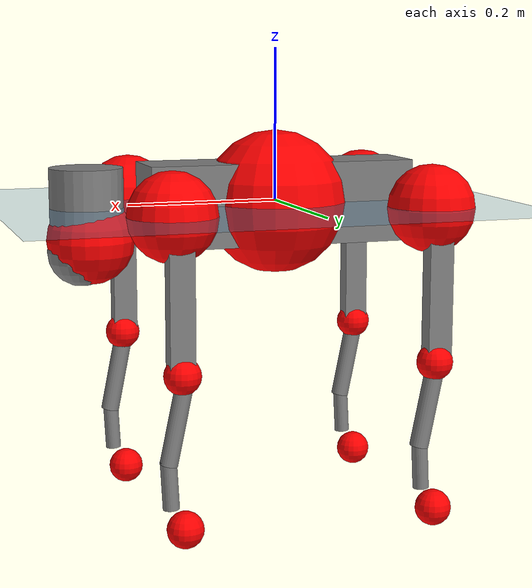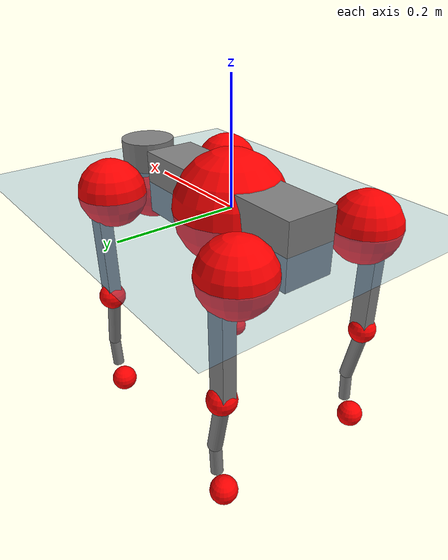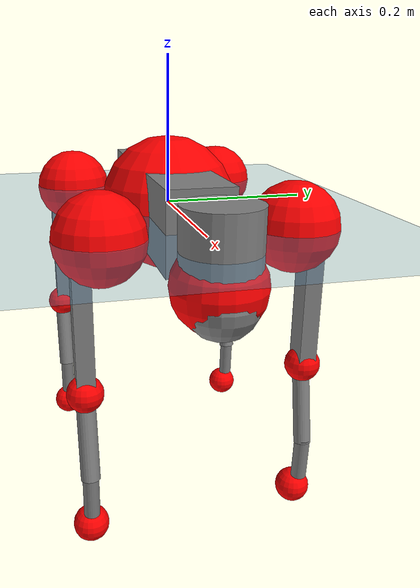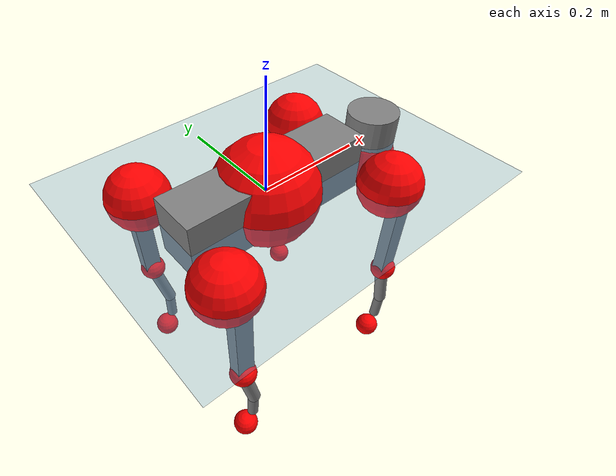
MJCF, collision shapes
<mujoco model="go2">
  <compiler angle="radian" assetdir="assets" balanceinertia="true" inertiafromgeom="false"/>

  <option timestep="0.005" density="1.2" viscosity="2e-05"/>

  <size nkey="1"/>

  <visual>
    <quality shadowsize="8192"/>
    <map shadowclip="0.5"/>
  </visual>

  <default>
    <default class="/">
      <geom contype="0" conaffinity="0" group="1" solref="-1000 -80"/>
      <site size="0.01 0.005 0.005" group="5"/>
      <general forcelimited="true" biastype="affine" gainprm="20" biasprm="0 -20 -0.5"/>
      <default class="go2">
        <joint armature="0.01" damping="0.01" frictionloss="0.2"/>
        <geom condim="1" margin="0.001"/>
        <default class="visual">
          <geom type="mesh" group="2"/>
        </default>
        <default class="collision">
          <geom group="3"/>
          <default class="foot">
            <geom size="0.022 0 0" condim="6" priority="1" friction="0.8 0.02 0.01" solimp="0.015 1 0.022"/>
          </default>
        </default>
        <default class="reward_collision_sphere">
          <geom group="5" rgba="1 0 0 1"/>
        </default>
      </default>
    </default>
  </default>

  <asset>
    <texture type="skybox" colorspace="auto" name="//unnamed_texture_0" builtin="gradient" rgb1="0.95 0.95 0.95" rgb2="0.95 0.95 0.95" width="100" height="600"/>
    <texture type="2d" colorspace="auto" name="texplane" builtin="checker" rgb1="0.345 0.575 0.748" rgb2="0.345 0.575 0.748" markrgb="1 1 1" width="512" height="512"/>
    <material name="MatPlane" class="/" texture="texplane" texuniform="true" texrepeat="2 2" specular="0.9"/>
    <material name="metal" class="/" rgba="0.9 0.95 0.95 1"/>
    <material name="black" class="/" rgba="0 0 0 1"/>
    <material name="white" class="/"/>
    <material name="gray" class="/" rgba="0.671705 0.692426 0.77427 1"/>
    <mesh name="base_0" class="/" file="base_0.obj"/>
    <mesh name="base_1" class="/" file="base_1.obj"/>
    <mesh name="base_2" class="/" file="base_2.obj"/>
    <mesh name="base_3" class="/" file="base_3.obj"/>
    <mesh name="base_4" class="/" file="base_4.obj"/>
    <mesh name="hip_0" class="/" file="hip_0.obj"/>
    <mesh name="hip_1" class="/" file="hip_1.obj"/>
    <mesh name="thigh_0" class="/" file="thigh_0.obj"/>
    <mesh name="thigh_1" class="/" file="thigh_1.obj"/>
    <mesh name="thigh_mirror_0" class="/" file="thigh_mirror_0.obj"/>
    <mesh name="thigh_mirror_1" class="/" file="thigh_mirror_1.obj"/>
    <mesh name="calf_0" class="/" file="calf_0.obj"/>
    <mesh name="calf_1" class="/" file="calf_1.obj"/>
    <mesh name="calf_mirror_0" class="/" file="calf_mirror_0.obj"/>
    <mesh name="calf_mirror_1" class="/" file="calf_mirror_1.obj"/>
    <mesh name="foot" class="/" file="foot.obj"/>
  </asset>

  <worldbody>
    <geom name="floor" class="/" size="100 100 0.125" type="plane" group="0" material="MatPlane"/>
    <light name="toplight_shadow" class="/" pos="0 0 5" dir="0.0990148 0.0990148 -0.990148" type="directional" ambient="0.04 0.04 0.04" diffuse="0.55 0.55 0.55" specular="0.12 0.12 0.12"/>
    <light name="toplight_fill" class="/" pos="0 0 5" dir="0.0990148 0.0990148 -0.990148" type="directional" castshadow="false" ambient="0.04 0.04 0.04" diffuse="0.3 0.3 0.3" specular="0.08 0.08 0.08"/>
    <body name="trunk" childclass="go2" pos="-8.06329e-05 -7.89557e-05 -0.00158823" quat="1 -0.000158519 -0.000155143 4.02681e-05">
      <inertial pos="0.0190641 0.00248583 -0.00296765" quat="-0.000524349 0.713429 -0.00171745 0.700725" mass="5.86427" diaginertia="0.0618488 0.117116 0.0163569"/>
      <joint name="//unnamed_joint_0" type="free" armature="0" damping="0" frictionloss="0"/>
      <geom name="//unnamed_geom_1" class="visual" material="black" mesh="base_0"/>
      <geom name="//unnamed_geom_2" class="visual" material="black" mesh="base_1"/>
      <geom name="//unnamed_geom_3" class="visual" material="black" mesh="base_2"/>
      <geom name="//unnamed_geom_4" class="visual" material="white" mesh="base_3"/>
      <geom name="//unnamed_geom_5" class="visual" material="gray" mesh="base_4"/>
      <geom name="trunk_1" class="collision" size="0.178752 0.0444266 0.0541672" type="box"/>
      <geom name="trunk_2" class="collision" size="0.0475151 0.0427636" pos="0.253946 0 0.00924265" type="cylinder"/>
      <geom name="trunk_3" class="collision" size="0.0446642" pos="0.261074 0 -0.0554559"/>
      <geom name="//unnamed_geom_9" class="reward_collision_sphere" size="0.0950302"/>
      <geom name="//unnamed_geom_10" class="reward_collision_sphere" size="0.0570181" pos="0.249491 0 -0.0415919"/>
      <site name="imu" pos="-0.0270168 -0.00239782 0.0356119" size="0.00950302"/>
      <camera name="track" pos="0 -2.0712 0" quat="0.707107 0.707107 0 0" mode="trackcom"/>
      <camera name="ego_camera" pos="0.278004 0 0.0415919" quat="-0.5 -0.5 0.5 0.5"/>
      <body name="FL_hip" pos="0.171482 0.0477066 0.000122528" quat="1 -0.00016236 -7.25453e-05 -0.000233688">
        <inertial pos="-0.00706526 0.00166048 -0.000532404" quat="0.495954 0.500931 0.50567 0.497389" mass="0.597239" diaginertia="0.000503694 0.000715971 0.00033052"/>
        <joint name="FL_hip_joint" pos="0 0 0" axis="0.999988 0.00368731 0.00321465" stiffness="0.00233826" range="-1.04032 1.05039" armature="0.00993877" damping="0.00759132" frictionloss="0.168679"/>
        <geom name="//unnamed_geom_11" class="visual" material="metal" mesh="hip_0"/>
        <geom name="//unnamed_geom_12" class="visual" material="gray" mesh="hip_1"/>
        <geom name="//unnamed_geom_13" class="collision" size="0.0437139 0.019006" pos="0 0.0828482 0" quat="0.707107 0.707107 0 0" type="cylinder"/>
        <geom name="//unnamed_geom_14" class="reward_collision_sphere" size="0.0570181" pos="0 0.0724922 0"/>
        <body name="FL_thigh" pos="-0.0019143 0.0987425 0.00227412" quat="1 6.19485e-05 6.41372e-05 4.06069e-06">
          <inertial pos="-0.00419287 -0.0227757 -0.0304482" quat="0.829474 0.0828391 -0.0181942 0.552068" mass="0.945095" diaginertia="0.0033439 0.00691007 0.000555028"/>
          <joint name="FL_thigh_joint" pos="0 0 0" axis="-0.00647785 0.999966 -0.00505679" stiffness="0.00399059" range="-1.59155 3.48825" armature="0.00912771" damping="0.00943777" frictionloss="0.191634"/>
          <geom name="//unnamed_geom_15" class="visual" material="metal" mesh="thigh_0"/>
          <geom name="//unnamed_geom_16" class="visual" material="gray" mesh="thigh_1"/>
          <geom name="//unnamed_geom_17" class="collision" size="0.101207 0.0116412 0.0161551" pos="0 0 -0.0984343" quat="0.707107 0 0.707107 0" type="box"/>
          <body name="FL_calf" pos="-0.0016902 0.000628348 -0.195105" quat="0.999999 -0.000861738 0.000801254 0.000690709">
            <inertial pos="0.00510381 -0.000562896 -0.130006" quat="0.710935 0.00122154 -0.00473608 0.703241" mass="0.204392" diaginertia="0.000837697 0.00170221 3.52424e-05"/>
            <joint name="FL_calf_joint" pos="0 0 0" axis="0.00338689 0.999958 0.00853525" stiffness="0.00011729" range="-2.72448 -0.824806" armature="0.00966845" damping="0.0120022" frictionloss="0.174952"/>
            <geom name="//unnamed_geom_18" class="visual" material="gray" mesh="calf_0"/>
            <geom name="//unnamed_geom_19" class="visual" material="black" mesh="calf_1"/>
            <geom name="FL_calf0" class="collision" size="0.0114036 0.0570181" pos="0.00712831 0 -0.0554559" quat="0.994493 0 -0.104807 0" type="cylinder"/>
            <geom name="//unnamed_geom_21" class="collision" size="0.0104533 0.0308848" pos="0.0178208 0 -0.136791" quat="0.999688 0 0.0249974 0" type="cylinder"/>
            <geom name="//unnamed_geom_22" class="visual" pos="0 0 -0.196869" quat="1 0 0 0" material="black" mesh="foot"/>
            <geom name="FL_foot" class="foot" size="0.018874" pos="-0.00178208 0 -0.196869"/>
            <geom name="//unnamed_geom_24" class="reward_collision_sphere" size="0.0237576"/>
            <geom name="//unnamed_geom_25" class="reward_collision_sphere" size="0.0237576" pos="-0.00178208 0 -0.196869"/>
            <site name="FL_foot" class="foot" pos="-0.00178208 0 -0.196869" size="0.00950302"/>
          </body>
        </body>
      </body>
      <body name="FR_hip" pos="0.172483 -0.0483439 -0.000839332" quat="0.999999 -0.000760934 0.000709281 0.000201405">
        <inertial pos="-0.00489687 -0.00165527 0.000518317" quat="0.4972 0.505107 0.500525 0.497125" mass="0.556461" diaginertia="0.000478165 0.000686773 0.000323509"/>
        <joint name="FR_hip_joint" pos="0 0 0" axis="0.999991 -0.00384835 0.00193702" stiffness="0.00310245" range="-1.00996 0.997236" armature="0.00946868" damping="0.0116795" frictionloss="0.179702"/>
        <geom name="//unnamed_geom_26" class="visual" pos="0 9.6992e-10 4.16019e-08" quat="4.63268e-05 1 0 0" material="metal" mesh="hip_0"/>
        <geom name="//unnamed_geom_27" class="visual" pos="0 1.57236e-09 -1.02897e-07" quat="4.63268e-05 1 0 0" material="gray" mesh="hip_1"/>
        <geom name="//unnamed_geom_28" class="collision" size="0.0437139 0.019006" pos="0 -0.0828482 0" quat="0.707107 0.707107 0 0" type="cylinder"/>
        <geom name="//unnamed_geom_29" class="reward_collision_sphere" size="0.0570181" pos="0 -0.0724922 0"/>
        <body name="FR_thigh" pos="0.00307305 -0.0974567 0.000793971" quat="1 0.000326093 -0.000109439 0.000238945">
          <inertial pos="-0.00262733 0.0236392 -0.0300858" quat="0.552566 -0.0204488 0.083647 0.829009" mass="1.02024" diaginertia="0.003341 0.00722048 0.000605916"/>
          <joint name="FR_thigh_joint" pos="0 0 0" axis="0.0092975 -0.999956 -0.00145006" stiffness="0.000539829" range="-3.4379 1.51676" armature="0.00960088" damping="0" frictionloss="0.199876"/>
          <geom name="//unnamed_geom_30" class="visual" material="metal" mesh="thigh_mirror_0"/>
          <geom name="//unnamed_geom_31" class="visual" material="gray" mesh="thigh_mirror_1"/>
          <geom name="//unnamed_geom_32" class="collision" size="0.101207 0.0116412 0.0161551" pos="0 0 -0.0984343" quat="0.707107 0 0.707107 0" type="box"/>
          <body name="FR_calf" pos="0.00248964 -0.000831503 -0.195917" quat="1 -0.000126143 -0.000442544 1.22557e-05">
            <inertial pos="0.00621992 0.00181662 -0.128351" quat="0.706679 -0.00185815 0.00137225 0.70753" mass="0.199631" diaginertia="0.000842001 0.00172941 3.55716e-05"/>
            <joint name="FR_calf_joint" pos="0 0 0" axis="0.00953355 -0.999955 0.000255039" range="0.817804 2.67611" armature="0.00959169" damping="0.0177419" frictionloss="0.164959"/>
            <geom name="//unnamed_geom_33" class="visual" material="gray" mesh="calf_mirror_0"/>
            <geom name="//unnamed_geom_34" class="visual" material="black" mesh="calf_mirror_1"/>
            <geom name="FR_calf0" class="collision" size="0.0123539 0.0570181" pos="0.00891039 0 -0.0554559" quat="0.995004 0 -0.0998334 0" type="cylinder"/>
            <geom name="//unnamed_geom_36" class="collision" size="0.0104533 0.0308848" pos="0.0178208 0 -0.136791" quat="0.999688 0 0.0249974 0" type="cylinder"/>
            <geom name="//unnamed_geom_37" class="visual" pos="0 0 -0.196869" quat="1 0 0 0" material="black" mesh="foot"/>
            <geom name="FR_foot" class="foot" size="0.0226143" pos="-0.00178208 0 -0.196869"/>
            <geom name="//unnamed_geom_39" class="reward_collision_sphere" size="0.0237576"/>
            <geom name="//unnamed_geom_40" class="reward_collision_sphere" size="0.0237576" pos="-0.00178208 0 -0.196869"/>
            <site name="FR_foot" class="foot" pos="-0.00178208 0 -0.196869" size="0.00950302"/>
          </body>
        </body>
      </body>
      <body name="RL_hip" pos="-0.171022 0.0504888 -0.00132985" quat="1 -0.000464668 0.000368517 0.000397455">
        <inertial pos="0.00464988 7.87762e-05 -0.000910211" quat="0.494664 0.499937 0.503474 0.501881" mass="0.562158" diaginertia="0.000490595 0.000719955 0.000324457"/>
        <joint name="RL_hip_joint" pos="0 0 0" axis="-0.999759 -0.00479475 -0.0214434" range="-1.06745 1.04292" armature="0.00960248" damping="0.0054601" frictionloss="0.192352"/>
        <geom name="//unnamed_geom_41" class="visual" pos="2.89459e-10 0 5.67406e-08" quat="4.63268e-05 0 1 0" material="metal" mesh="hip_0"/>
        <geom name="//unnamed_geom_42" class="visual" pos="4.69247e-10 0 5.03208e-08" quat="4.63268e-05 0 1 0" material="gray" mesh="hip_1"/>
        <geom name="//unnamed_geom_43" class="collision" size="0.0437139 0.019006" pos="0 0.0828482 0" quat="0.707107 0.707107 0 0" type="cylinder"/>
        <geom name="//unnamed_geom_44" class="reward_collision_sphere" size="0.0570181" pos="0 0.0724922 0"/>
        <body name="RL_thigh" pos="-0.000413626 0.0964828 -0.000686493" quat="1 -8.16171e-06 3.1631e-06 -0.00023901">
          <inertial pos="-0.00245812 -0.0243658 -0.0302675" quat="0.831225 0.084418 -0.0205198 0.549105" mass="0.99357" diaginertia="0.00348335 0.00713851 0.000612553"/>
          <joint name="RL_thigh_joint" pos="0 0 0" axis="0.011963 0.99992 0.00399695" stiffness="0.00457574" range="-0.522414 4.5412" armature="0.00934497" damping="0.00715375" frictionloss="0.191427"/>
          <geom name="//unnamed_geom_45" class="visual" material="metal" mesh="thigh_0"/>
          <geom name="//unnamed_geom_46" class="visual" material="gray" mesh="thigh_1"/>
          <geom name="//unnamed_geom_47" class="collision" size="0.101207 0.0116412 0.0161551" pos="0 0 -0.0984343" quat="0.707107 0 0.707107 0" type="box"/>
          <body name="RL_calf" pos="0.00232606 0.000374598 -0.196947" quat="0.999999 5.05587e-05 -0.000235861 0.00116086">
            <inertial pos="0.00756888 0.000430569 -0.132098" quat="0.71072 0.0015827 -0.00455092 0.703458" mass="0.207225" diaginertia="0.000874663 0.00185755 3.82077e-05"/>
            <joint name="RL_calf_joint" pos="0 0 0" axis="-0.0116163 0.999859 0.0121593" range="-2.72473 -0.887741" armature="0.00947641" damping="0.00629005" frictionloss="0.190628"/>
            <geom name="//unnamed_geom_48" class="visual" material="gray" mesh="calf_0"/>
            <geom name="//unnamed_geom_49" class="visual" material="black" mesh="calf_1"/>
            <geom name="RL_calf0" class="collision" size="0.0123539 0.0570181" pos="0.00891039 0 -0.0554559" quat="0.995004 0 -0.0998334 0" type="cylinder"/>
            <geom name="//unnamed_geom_51" class="collision" size="0.0104533 0.0308848" pos="0.0178208 0 -0.136791" quat="0.999688 0 0.0249974 0" type="cylinder"/>
            <geom name="//unnamed_geom_52" class="visual" pos="0 0 -0.196869" quat="1 0 0 0" material="black" mesh="foot"/>
            <geom name="RL_foot" class="foot" size="0.0164315" pos="-0.00178208 0 -0.196869"/>
            <geom name="//unnamed_geom_54" class="reward_collision_sphere" size="0.0237576"/>
            <geom name="//unnamed_geom_55" class="reward_collision_sphere" size="0.0237576" pos="-0.00178208 0 -0.196869"/>
            <site name="RL_foot" class="foot" pos="-0.00178208 0 -0.196869" size="0.00950302"/>
          </body>
        </body>
      </body>
      <body name="RR_hip" pos="-0.171894 -0.0474469 -0.00232453" quat="0.999999 -0.00010065 0.000966946 -0.000689786">
        <inertial pos="0.00368568 -0.00188043 0.000373476" quat="0.493563 0.489909 0.507263 0.508988" mass="0.580634" diaginertia="0.000495063 0.000698323 0.000318238"/>
        <joint name="RR_hip_joint" pos="0 0 0" axis="-0.999997 0.00135826 -0.00179933" range="-1.09416 1.02653" armature="0.00824346" damping="0.00871877" frictionloss="0.1995"/>
        <geom name="//unnamed_geom_56" class="visual" pos="-2.84454e-10 9.6992e-10 1.51387e-08" quat="2.14617e-09 4.63268e-05 4.63268e-05 -1" material="metal" mesh="hip_0"/>
        <geom name="//unnamed_geom_57" class="visual" pos="-4.81627e-10 1.57236e-09 1.53218e-07" quat="2.14617e-09 4.63268e-05 4.63268e-05 -1" material="gray" mesh="hip_1"/>
        <geom name="//unnamed_geom_58" class="collision" size="0.0437139 0.019006" pos="0 -0.0828482 0" quat="0.707107 0.707107 0 0" type="cylinder"/>
        <geom name="//unnamed_geom_59" class="reward_collision_sphere" size="0.0570181" pos="0 -0.0724922 0"/>
        <body name="RR_thigh" pos="0.000104901 -0.0991498 -0.00318597" quat="1 -7.78475e-05 7.83223e-05 5.06996e-05">
          <inertial pos="-0.00326234 0.0258245 -0.0296928" quat="0.558838 -0.0212385 0.08933 0.824178" mass="0.956335" diaginertia="0.00320984 0.00670623 0.000571822"/>
          <joint name="RR_thigh_joint" pos="0 0 0" axis="0.000545027 -0.999999 0.00101996" stiffness="0.00602368" range="-4.54847 0.47174" armature="0.0108912" damping="0.0121943" frictionloss="0.180679"/>
          <geom name="//unnamed_geom_60" class="visual" material="metal" mesh="thigh_mirror_0"/>
          <geom name="//unnamed_geom_61" class="visual" material="gray" mesh="thigh_mirror_1"/>
          <geom name="//unnamed_geom_62" class="collision" size="0.101207 0.0116412 0.0161551" pos="0 0 -0.0984343" quat="0.707107 0 0.707107 0" type="box"/>
          <body name="RR_calf" pos="-0.000982836 -0.00258999 -0.197356" quat="1 0.000424676 -0.000180421 -0.000874618">
            <inertial pos="0.0054396 0.000397957 -0.130508" quat="0.711914 -0.00177574 -0.00387498 0.702254" mass="0.200131" diaginertia="0.000826681 0.00176176 3.69508e-05"/>
            <joint name="RR_calf_joint" pos="0 0 0" axis="0.000665215 -0.999967 0.00813273" stiffness="0.0106146" range="0.879956 2.77522" armature="0.00926872" damping="0.0148353" frictionloss="0.185802"/>
            <geom name="//unnamed_geom_63" class="visual" material="gray" mesh="calf_mirror_0"/>
            <geom name="//unnamed_geom_64" class="visual" material="black" mesh="calf_mirror_1"/>
            <geom name="RR_calf0" class="collision" size="0.0123539 0.0570181" pos="0.00891039 0 -0.0554559" quat="0.995004 0 -0.0998334 0" type="cylinder"/>
            <geom name="//unnamed_geom_66" class="collision" size="0.0104533 0.0308848" pos="0.0178208 0 -0.136791" quat="0.999688 0 0.0249974 0" type="cylinder"/>
            <geom name="//unnamed_geom_67" class="visual" pos="0 0 -0.196869" quat="1 0 0 0" material="black" mesh="foot"/>
            <geom name="RR_foot" class="foot" size="0.020488" pos="-0.00178208 0 -0.196869"/>
            <geom name="//unnamed_geom_69" class="reward_collision_sphere" size="0.0237576"/>
            <geom name="//unnamed_geom_70" class="reward_collision_sphere" size="0.0237576" pos="-0.00178208 0 -0.196869"/>
            <site name="RR_foot" class="foot" pos="-0.00178208 0 -0.196869" size="0.00950302"/>
          </body>
        </body>
      </body>
    </body>
  </worldbody>

  <contact>
    <pair class="/" geom1="floor" geom2="FL_foot" name="//unnamed_contact_0"/>
    <pair class="/" geom1="floor" geom2="FR_foot" name="//unnamed_contact_1"/>
    <pair class="/" geom1="floor" geom2="RL_foot" name="//unnamed_contact_2"/>
    <pair class="/" geom1="floor" geom2="RR_foot" name="//unnamed_contact_3"/>
  </contact>

  <actuator>
    <general name="FL_hip" class="/" joint="FL_hip_joint" forcerange="-21.9772 21.9772" gainprm="20.3562" biasprm="0 -20.3562 -0.469345"/>
    <general name="FL_thigh" class="/" joint="FL_thigh_joint" forcerange="-20.3389 20.3389" gainprm="20.3562" biasprm="0 -20.3562 -0.469345"/>
    <general name="FL_calf" class="/" joint="FL_calf_joint" forcerange="-41.3086 41.3086" gainprm="20.3562" biasprm="0 -20.3562 -0.469345"/>
    <general name="FR_hip" class="/" joint="FR_hip_joint" forcerange="-23.2985 23.2985" gainprm="20.3562" biasprm="0 -20.3562 -0.469345"/>
    <general name="FR_thigh" class="/" joint="FR_thigh_joint" forcerange="-21.793 21.793" gainprm="20.3562" biasprm="0 -20.3562 -0.469345"/>
    <general name="FR_calf" class="/" joint="FR_calf_joint" forcerange="-43.339 43.339" gainprm="20.3562" biasprm="0 -20.3562 -0.469345"/>
    <general name="RL_hip" class="/" joint="RL_hip_joint" forcerange="-23.6196 23.6196" gainprm="20.3562" biasprm="0 -20.3562 -0.469345"/>
    <general name="RL_thigh" class="/" joint="RL_thigh_joint" forcerange="-22.5833 22.5833" gainprm="20.3562" biasprm="0 -20.3562 -0.469345"/>
    <general name="RL_calf" class="/" joint="RL_calf_joint" forcerange="-42.7064 42.7064" gainprm="20.3562" biasprm="0 -20.3562 -0.469345"/>
    <general name="RR_hip" class="/" joint="RR_hip_joint" forcerange="-20.2917 20.2917" gainprm="20.3562" biasprm="0 -20.3562 -0.469345"/>
    <general name="RR_thigh" class="/" joint="RR_thigh_joint" forcerange="-23.1178 23.1178" gainprm="20.3562" biasprm="0 -20.3562 -0.469345"/>
    <general name="RR_calf" class="/" joint="RR_calf_joint" forcerange="-44.2799 44.2799" gainprm="20.3562" biasprm="0 -20.3562 -0.469345"/>
  </actuator>

  <sensor>
    <gyro site="imu" name="imu_angular_velocity"/>
    <velocimeter site="imu" name="imu_linear_velocity"/>
    <framelinvel objtype="site" objname="FL_foot" name="FL_foot_global_linear_velocity"/>
    <framelinvel objtype="site" objname="FR_foot" name="FR_foot_global_linear_velocity"/>
    <framelinvel objtype="site" objname="RL_foot" name="RL_foot_global_linear_velocity"/>
    <framelinvel objtype="site" objname="RR_foot" name="RR_foot_global_linear_velocity"/>
  </sensor>

  <keyframe>
    <key name="home" qpos="0 0 0.325 1 0 0 0 0.1 0.8 -1.5 -0.1 -0.8 1.5 -0.1 0.8 -1.5 0.1 -0.8 1.5"/>
  </keyframe>
</mujoco>
